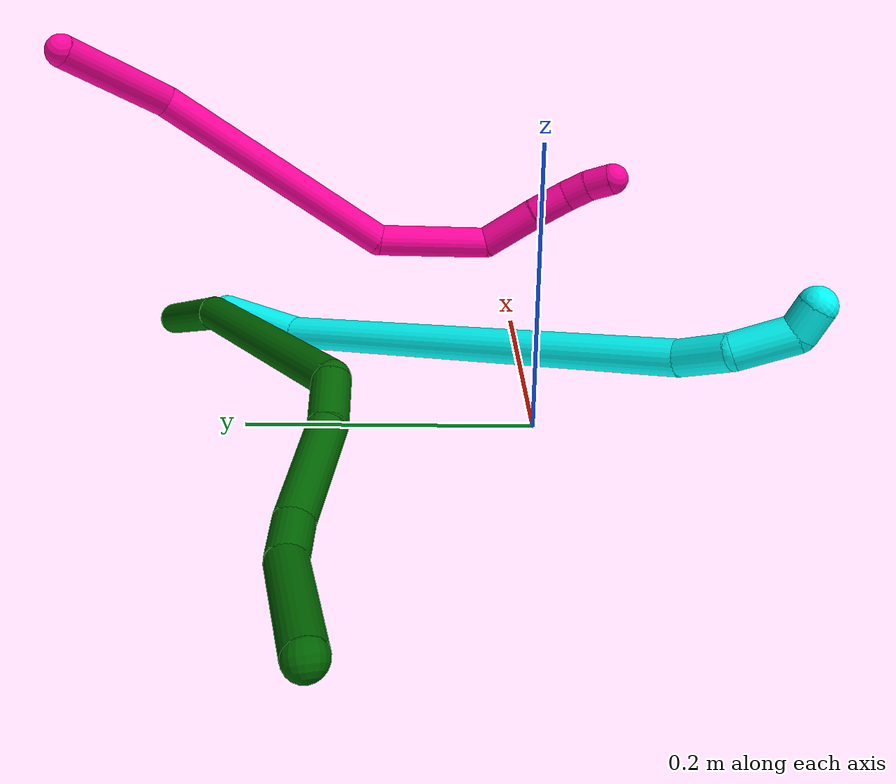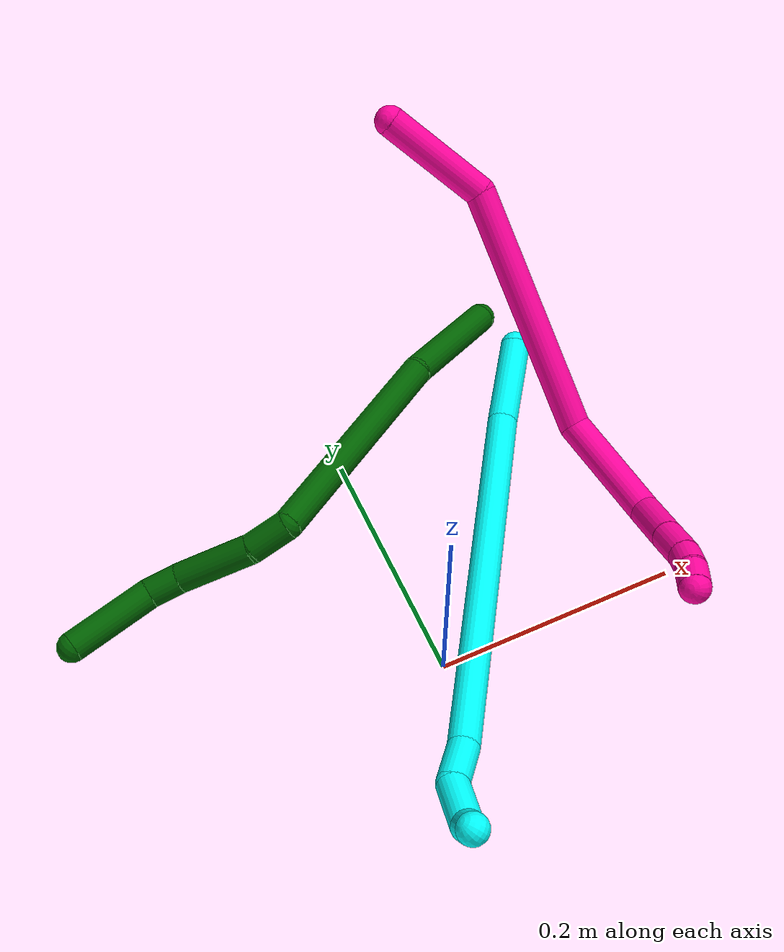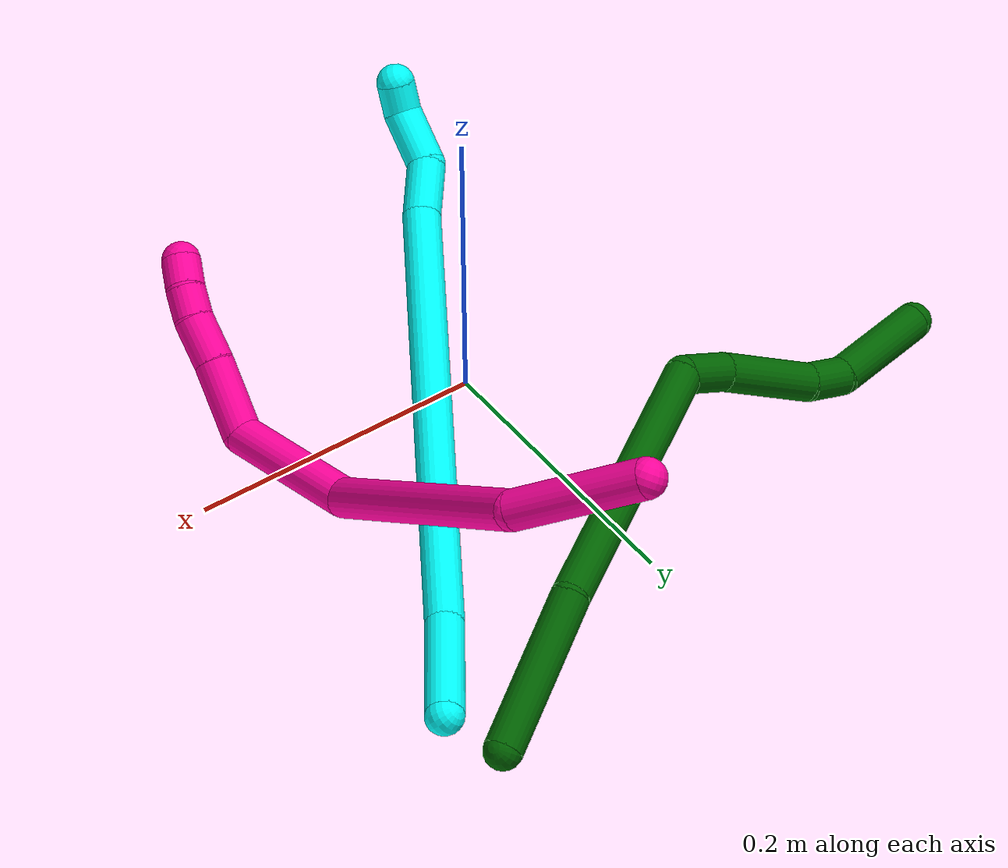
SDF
<sdf version="1.7">
 <world name="default">
  <model name="3">
   <static>0</static>
   <link name="3">
    <collision name="collision-cylinder-e_1_1_4">
     <pose>-0.022077 -0.032262 -0.004088 1.69684 -0.596408 -0.67117</pose>
     <geometry><cylinder><radius>0.0125</radius><length>0.07861</length></cylinder></geometry>
     <surface>
      <friction><ode><mu>1.16</mu><mu2>1.16</mu2><slip1>0</slip1><slip2>0</slip2></ode></friction>
      <contact><ode><kp>1e+06</kp><kd>1</kd><max_vel>0</max_vel><min_depth>0.001</min_depth></ode></contact>
     </surface>
    </collision>
    <visual name="visual-cylinder-e_1_1_4">
     <pose>-0.022077 -0.032262 -0.004088 1.69684 -0.596408 -0.67117</pose>
     <geometry><cylinder><radius>0.0125</radius><length>0.07861</length></cylinder></geometry>
     <material><ambient>0.003922 1 0.996078 1</ambient></material>
    </visual>
    <collision name="collision-cylinder-e_2_4_5">
     <pose>-0.111099 -0.210928 -0.00857 1.57349 -0.428872 -0.429992</pose>
     <geometry><cylinder><radius>0.0125</radius><length>0.321971</length></cylinder></geometry>
     <surface>
      <friction><ode><mu>1.16</mu><mu2>1.16</mu2><slip1>0</slip1><slip2>0</slip2></ode></friction>
      <contact><ode><kp>1e+06</kp><kd>1</kd><max_vel>0</max_vel><min_depth>0.001</min_depth></ode></contact>
     </surface>
    </collision>
    <visual name="visual-cylinder-e_2_4_5">
     <pose>-0.111099 -0.210928 -0.00857 1.57349 -0.428872 -0.429992</pose>
     <geometry><cylinder><radius>0.0125</radius><length>0.321971</length></cylinder></geometry>
     <material><ambient>0.003922 1 0.996078 1</ambient></material>
    </visual>
    <collision name="collision-cylinder-e_3_5_6">
     <pose>-0.184427 -0.374574 -0.004468 1.31573 -0.344021 -0.266879</pose>
     <geometry><cylinder><radius>0.0125</radius><length>0.037852</length></cylinder></geometry>
     <surface>
      <friction><ode><mu>1.16</mu><mu2>1.16</mu2><slip1>0</slip1><slip2>0</slip2></ode></friction>
      <contact><ode><kp>1e+06</kp><kd>1</kd><max_vel>0</max_vel><min_depth>0.001</min_depth></ode></contact>
     </surface>
    </collision>
    <visual name="visual-cylinder-e_3_5_6">
     <pose>-0.184427 -0.374574 -0.004468 1.31573 -0.344021 -0.266879</pose>
     <geometry><cylinder><radius>0.0125</radius><length>0.037852</length></cylinder></geometry>
     <material><ambient>0.003922 1 0.996078 1</ambient></material>
    </visual>
    <collision name="collision-cylinder-e_4_6_7">
     <pose>-0.191055 -0.411975 -0.001724 1.65745 -0.012093 -0.013189</pose>
     <geometry><cylinder><radius>0.0125</radius><length>0.040475</length></cylinder></geometry>
     <surface>
      <friction><ode><mu>1.16</mu><mu2>1.16</mu2><slip1>0</slip1><slip2>0</slip2></ode></friction>
      <contact><ode><kp>1e+06</kp><kd>1</kd><max_vel>0</max_vel><min_depth>0.001</min_depth></ode></contact>
     </surface>
    </collision>
    <visual name="visual-cylinder-e_4_6_7">
     <pose>-0.191055 -0.411975 -0.001724 1.65745 -0.012093 -0.013189</pose>
     <geometry><cylinder><radius>0.0125</radius><length>0.040475</length></cylinder></geometry>
     <material><ambient>0.003922 1 0.996078 1</ambient></material>
    </visual>
    <collision name="collision-cylinder-e_5_7_2">
     <pose>-0.186788 -0.440553 0.000997 1.08238 0.442105 0.268516</pose>
     <geometry><cylinder><radius>0.0125</radius><length>0.021091</length></cylinder></geometry>
     <surface>
      <friction><ode><mu>1.16</mu><mu2>1.16</mu2><slip1>0</slip1><slip2>0</slip2></ode></friction>
      <contact><ode><kp>1e+06</kp><kd>1</kd><max_vel>0</max_vel><min_depth>0.001</min_depth></ode></contact>
     </surface>
    </collision>
    <visual name="visual-cylinder-e_5_7_2">
     <pose>-0.186788 -0.440553 0.000997 1.08238 0.442105 0.268516</pose>
     <geometry><cylinder><radius>0.0125</radius><length>0.021091</length></cylinder></geometry>
     <material><ambient>0.003922 1 0.996078 1</ambient></material>
    </visual>
    <collision name="collision-sphere-2">
     <pose>-0.182276 -0.44897 0.00547 0 -0 0</pose>
     <geometry><sphere><radius>0.0125</radius></sphere></geometry>
     <surface>
      <friction><ode><mu>1.16</mu><mu2>1.16</mu2><slip1>0</slip1><slip2>0</slip2></ode></friction>
      <contact><ode><kp>1e+06</kp><kd>1</kd><max_vel>0</max_vel><min_depth>0.001</min_depth></ode></contact>
     </surface>
    </collision>
    <visual name="visual-sphere-2">
     <pose>-0.182276 -0.44897 0.00547 0 -0 0</pose>
     <geometry><sphere><radius>0.0125</radius></sphere></geometry>
     <material><ambient>0.003922 1 0.996078 1</ambient></material>
    </visual>
    <collision name="collision-sphere-7">
     <pose>-0.1913 -0.432135 -0.003476 0 -0 0</pose>
     <geometry><sphere><radius>0.0125</radius></sphere></geometry>
     <surface>
      <friction><ode><mu>1.16</mu><mu2>1.16</mu2><slip1>0</slip1><slip2>0</slip2></ode></friction>
      <contact><ode><kp>1e+06</kp><kd>1</kd><max_vel>0</max_vel><min_depth>0.001</min_depth></ode></contact>
     </surface>
    </collision>
    <visual name="visual-sphere-7">
     <pose>-0.1913 -0.432135 -0.003476 0 -0 0</pose>
     <geometry><sphere><radius>0.0125</radius></sphere></geometry>
     <material><ambient>0.003922 1 0.996078 1</ambient></material>
    </visual>
    <collision name="collision-sphere-6">
     <pose>-0.19081 -0.391815 2.7e-05 0 -0 0</pose>
     <geometry><sphere><radius>0.0125</radius></sphere></geometry>
     <surface>
      <friction><ode><mu>1.16</mu><mu2>1.16</mu2><slip1>0</slip1><slip2>0</slip2></ode></friction>
      <contact><ode><kp>1e+06</kp><kd>1</kd><max_vel>0</max_vel><min_depth>0.001</min_depth></ode></contact>
     </surface>
    </collision>
    <visual name="visual-sphere-6">
     <pose>-0.19081 -0.391815 2.7e-05 0 -0 0</pose>
     <geometry><sphere><radius>0.0125</radius></sphere></geometry>
     <material><ambient>0.003922 1 0.996078 1</ambient></material>
    </visual>
    <collision name="collision-sphere-5">
     <pose>-0.178044 -0.357334 -0.008964 0 -0 0</pose>
     <geometry><sphere><radius>0.0125</radius></sphere></geometry>
     <surface>
      <friction><ode><mu>1.16</mu><mu2>1.16</mu2><slip1>0</slip1><slip2>0</slip2></ode></friction>
      <contact><ode><kp>1e+06</kp><kd>1</kd><max_vel>0</max_vel><min_depth>0.001</min_depth></ode></contact>
     </surface>
    </collision>
    <visual name="visual-sphere-5">
     <pose>-0.178044 -0.357334 -0.008964 0 -0 0</pose>
     <geometry><sphere><radius>0.0125</radius></sphere></geometry>
     <material><ambient>0.003922 1 0.996078 1</ambient></material>
    </visual>
    <collision name="collision-sphere-1">
     <geometry><sphere><radius>0.0125</radius></sphere></geometry>
     <surface>
      <friction><ode><mu>1.16</mu><mu2>1.16</mu2><slip1>0</slip1><slip2>0</slip2></ode></friction>
      <contact><ode><kp>1e+06</kp><kd>1</kd><max_vel>0</max_vel><min_depth>0.001</min_depth></ode></contact>
     </surface>
    </collision>
    <visual name="visual-sphere-1">
     <geometry><sphere><radius>0.0125</radius></sphere></geometry>
     <material><ambient>0.003922 1 0.996078 1</ambient></material>
    </visual>
    <collision name="collision-sphere-4">
     <pose>-0.044153 -0.064523 -0.008176 0 -0 0</pose>
     <geometry><sphere><radius>0.0125</radius></sphere></geometry>
     <surface>
      <friction><ode><mu>1.16</mu><mu2>1.16</mu2><slip1>0</slip1><slip2>0</slip2></ode></friction>
      <contact><ode><kp>1e+06</kp><kd>1</kd><max_vel>0</max_vel><min_depth>0.001</min_depth></ode></contact>
     </surface>
    </collision>
    <visual name="visual-sphere-4">
     <pose>-0.044153 -0.064523 -0.008176 0 -0 0</pose>
     <geometry><sphere><radius>0.0125</radius></sphere></geometry>
     <material><ambient>0.003922 1 0.996078 1</ambient></material>
    </visual>
    <inertial>
     <pose>-0.112319 -0.221188 -0.006597 0 -0 0</pose>
     <mass>0.5</mass>
     <inertia>
      <ixx>0.001255</ixx>
      <ixy>0</ixy>
      <ixz>0</ixz>
      <iyy>-0.000627</iyy>
      <iyz>0</iyz>
      <izz>0.003779</izz>
     </inertia>
    </inertial>
   </link>
   <pose>0.185727 0.243817 0.015055 -0.579364 -0.620935 0.125806</pose>
  </model>
  <model name="6">
   <static>0</static>
   <link name="6">
    <collision name="collision-cylinder-e_1_1_4">
     <pose>-0.038028 -0.033335 -0.017371 2.05117 -0.791192 -1.20596</pose>
     <geometry><cylinder><radius>0.0125</radius><length>0.106941</length></cylinder></geometry>
     <surface>
      <friction><ode><mu>1.16</mu><mu2>1.16</mu2><slip1>0</slip1><slip2>0</slip2></ode></friction>
      <contact><ode><kp>1e+06</kp><kd>1</kd><max_vel>0</max_vel><min_depth>0.001</min_depth></ode></contact>
     </surface>
    </collision>
    <visual name="visual-cylinder-e_1_1_4">
     <pose>-0.038028 -0.033335 -0.017371 2.05117 -0.791192 -1.20596</pose>
     <geometry><cylinder><radius>0.0125</radius><length>0.106941</length></cylinder></geometry>
     <material><ambient>0 0.392157 0.003922 1</ambient></material>
    </visual>
    <collision name="collision-cylinder-e_2_4_5">
     <pose>-0.129798 -0.125209 -0.086896 2.2986 -0.600904 -1.20934</pose>
     <geometry><cylinder><radius>0.0125</radius><length>0.190106</length></cylinder></geometry>
     <surface>
      <friction><ode><mu>1.16</mu><mu2>1.16</mu2><slip1>0</slip1><slip2>0</slip2></ode></friction>
      <contact><ode><kp>1e+06</kp><kd>1</kd><max_vel>0</max_vel><min_depth>0.001</min_depth></ode></contact>
     </surface>
    </collision>
    <visual name="visual-cylinder-e_2_4_5">
     <pose>-0.129798 -0.125209 -0.086896 2.2986 -0.600904 -1.20934</pose>
     <geometry><cylinder><radius>0.0125</radius><length>0.190106</length></cylinder></geometry>
     <material><ambient>0 0.392157 0.003922 1</ambient></material>
    </visual>
    <collision name="collision-cylinder-e_3_5_6">
     <pose>-0.190902 -0.183366 -0.155004 -3.11773 -0.432268 3.03302</pose>
     <geometry><cylinder><radius>0.0125</radius><length>0.035147</length></cylinder></geometry>
     <surface>
      <friction><ode><mu>1.16</mu><mu2>1.16</mu2><slip1>0</slip1><slip2>0</slip2></ode></friction>
      <contact><ode><kp>1e+06</kp><kd>1</kd><max_vel>0</max_vel><min_depth>0.001</min_depth></ode></contact>
     </surface>
    </collision>
    <visual name="visual-cylinder-e_3_5_6">
     <pose>-0.190902 -0.183366 -0.155004 -3.11773 -0.432268 3.03302</pose>
     <geometry><cylinder><radius>0.0125</radius><length>0.035147</length></cylinder></geometry>
     <material><ambient>0 0.392157 0.003922 1</ambient></material>
    </visual>
    <collision name="collision-cylinder-e_4_6_7">
     <pose>-0.212619 -0.174834 -0.199572 -2.86408 -0.449519 2.04489</pose>
     <geometry><cylinder><radius>0.0125</radius><length>0.066071</length></cylinder></geometry>
     <surface>
      <friction><ode><mu>1.16</mu><mu2>1.16</mu2><slip1>0</slip1><slip2>0</slip2></ode></friction>
      <contact><ode><kp>1e+06</kp><kd>1</kd><max_vel>0</max_vel><min_depth>0.001</min_depth></ode></contact>
     </surface>
    </collision>
    <visual name="visual-cylinder-e_4_6_7">
     <pose>-0.212619 -0.174834 -0.199572 -2.86408 -0.449519 2.04489</pose>
     <geometry><cylinder><radius>0.0125</radius><length>0.066071</length></cylinder></geometry>
     <material><ambient>0 0.392157 0.003922 1</ambient></material>
    </visual>
    <collision name="collision-cylinder-e_5_7_8">
     <pose>-0.234825 -0.166201 -0.239784 -3.10007 -0.594698 3.00628</pose>
     <geometry><cylinder><radius>0.0125</radius><length>0.028026</length></cylinder></geometry>
     <surface>
      <friction><ode><mu>1.16</mu><mu2>1.16</mu2><slip1>0</slip1><slip2>0</slip2></ode></friction>
      <contact><ode><kp>1e+06</kp><kd>1</kd><max_vel>0</max_vel><min_depth>0.001</min_depth></ode></contact>
     </surface>
    </collision>
    <visual name="visual-cylinder-e_5_7_8">
     <pose>-0.234825 -0.166201 -0.239784 -3.10007 -0.594698 3.00628</pose>
     <geometry><cylinder><radius>0.0125</radius><length>0.028026</length></cylinder></geometry>
     <material><ambient>0 0.392157 0.003922 1</ambient></material>
    </visual>
    <collision name="collision-cylinder-e_6_8_2">
     <pose>-0.266498 -0.176774 -0.277238 2.73759 -0.702838 -2.12278</pose>
     <geometry><cylinder><radius>0.0125</radius><length>0.073709</length></cylinder></geometry>
     <surface>
      <friction><ode><mu>1.16</mu><mu2>1.16</mu2><slip1>0</slip1><slip2>0</slip2></ode></friction>
      <contact><ode><kp>1e+06</kp><kd>1</kd><max_vel>0</max_vel><min_depth>0.001</min_depth></ode></contact>
     </surface>
    </collision>
    <visual name="visual-cylinder-e_6_8_2">
     <pose>-0.266498 -0.176774 -0.277238 2.73759 -0.702838 -2.12278</pose>
     <geometry><cylinder><radius>0.0125</radius><length>0.073709</length></cylinder></geometry>
     <material><ambient>0 0.392157 0.003922 1</ambient></material>
    </visual>
    <collision name="collision-sphere-2">
     <pose>-0.29032 -0.187828 -0.303095 0 -0 0</pose>
     <geometry><sphere><radius>0.0125</radius></sphere></geometry>
     <surface>
      <friction><ode><mu>1.16</mu><mu2>1.16</mu2><slip1>0</slip1><slip2>0</slip2></ode></friction>
      <contact><ode><kp>1e+06</kp><kd>1</kd><max_vel>0</max_vel><min_depth>0.001</min_depth></ode></contact>
     </surface>
    </collision>
    <visual name="visual-sphere-2">
     <pose>-0.29032 -0.187828 -0.303095 0 -0 0</pose>
     <geometry><sphere><radius>0.0125</radius></sphere></geometry>
     <material><ambient>0 0.392157 0.003922 1</ambient></material>
    </visual>
    <collision name="collision-sphere-4">
     <pose>-0.076056 -0.066671 -0.034741 0 -0 0</pose>
     <geometry><sphere><radius>0.0125</radius></sphere></geometry>
     <surface>
      <friction><ode><mu>1.16</mu><mu2>1.16</mu2><slip1>0</slip1><slip2>0</slip2></ode></friction>
      <contact><ode><kp>1e+06</kp><kd>1</kd><max_vel>0</max_vel><min_depth>0.001</min_depth></ode></contact>
     </surface>
    </collision>
    <visual name="visual-sphere-4">
     <pose>-0.076056 -0.066671 -0.034741 0 -0 0</pose>
     <geometry><sphere><radius>0.0125</radius></sphere></geometry>
     <material><ambient>0 0.392157 0.003922 1</ambient></material>
    </visual>
    <collision name="collision-sphere-1">
     <geometry><sphere><radius>0.0125</radius></sphere></geometry>
     <surface>
      <friction><ode><mu>1.16</mu><mu2>1.16</mu2><slip1>0</slip1><slip2>0</slip2></ode></friction>
      <contact><ode><kp>1e+06</kp><kd>1</kd><max_vel>0</max_vel><min_depth>0.001</min_depth></ode></contact>
     </surface>
    </collision>
    <visual name="visual-sphere-1">
     <geometry><sphere><radius>0.0125</radius></sphere></geometry>
     <material><ambient>0 0.392157 0.003922 1</ambient></material>
    </visual>
    <collision name="collision-sphere-8">
     <pose>-0.242675 -0.165719 -0.251382 0 -0 0</pose>
     <geometry><sphere><radius>0.0125</radius></sphere></geometry>
     <surface>
      <friction><ode><mu>1.16</mu><mu2>1.16</mu2><slip1>0</slip1><slip2>0</slip2></ode></friction>
      <contact><ode><kp>1e+06</kp><kd>1</kd><max_vel>0</max_vel><min_depth>0.001</min_depth></ode></contact>
     </surface>
    </collision>
    <visual name="visual-sphere-8">
     <pose>-0.242675 -0.165719 -0.251382 0 -0 0</pose>
     <geometry><sphere><radius>0.0125</radius></sphere></geometry>
     <material><ambient>0 0.392157 0.003922 1</ambient></material>
    </visual>
    <collision name="collision-sphere-5">
     <pose>-0.18354 -0.183747 -0.139052 0 -0 0</pose>
     <geometry><sphere><radius>0.0125</radius></sphere></geometry>
     <surface>
      <friction><ode><mu>1.16</mu><mu2>1.16</mu2><slip1>0</slip1><slip2>0</slip2></ode></friction>
      <contact><ode><kp>1e+06</kp><kd>1</kd><max_vel>0</max_vel><min_depth>0.001</min_depth></ode></contact>
     </surface>
    </collision>
    <visual name="visual-sphere-5">
     <pose>-0.18354 -0.183747 -0.139052 0 -0 0</pose>
     <geometry><sphere><radius>0.0125</radius></sphere></geometry>
     <material><ambient>0 0.392157 0.003922 1</ambient></material>
    </visual>
    <collision name="collision-sphere-6">
     <pose>-0.198264 -0.182986 -0.170957 0 -0 0</pose>
     <geometry><sphere><radius>0.0125</radius></sphere></geometry>
     <surface>
      <friction><ode><mu>1.16</mu><mu2>1.16</mu2><slip1>0</slip1><slip2>0</slip2></ode></friction>
      <contact><ode><kp>1e+06</kp><kd>1</kd><max_vel>0</max_vel><min_depth>0.001</min_depth></ode></contact>
     </surface>
    </collision>
    <visual name="visual-sphere-6">
     <pose>-0.198264 -0.182986 -0.170957 0 -0 0</pose>
     <geometry><sphere><radius>0.0125</radius></sphere></geometry>
     <material><ambient>0 0.392157 0.003922 1</ambient></material>
    </visual>
    <collision name="collision-sphere-7">
     <pose>-0.226974 -0.166683 -0.228187 0 -0 0</pose>
     <geometry><sphere><radius>0.0125</radius></sphere></geometry>
     <surface>
      <friction><ode><mu>1.16</mu><mu2>1.16</mu2><slip1>0</slip1><slip2>0</slip2></ode></friction>
      <contact><ode><kp>1e+06</kp><kd>1</kd><max_vel>0</max_vel><min_depth>0.001</min_depth></ode></contact>
     </surface>
    </collision>
    <visual name="visual-sphere-7">
     <pose>-0.226974 -0.166683 -0.228187 0 -0 0</pose>
     <geometry><sphere><radius>0.0125</radius></sphere></geometry>
     <material><ambient>0 0.392157 0.003922 1</ambient></material>
    </visual>
    <inertial>
     <pose>-0.151448 -0.126104 -0.128332 0 -0 0</pose>
     <mass>0.5</mass>
     <inertia>
      <ixx>-0.000378</ixx>
      <ixy>0</ixy>
      <ixz>0</ixz>
      <iyy>-0.000348</iyy>
      <iyz>0</iyz>
      <izz>0.000846</izz>
     </inertia>
    </inertial>
   </link>
   <pose>0.17216 0.285301 0.012336 -0.33429 0.660507 -0.305425</pose>
  </model>
  <model name="18">
   <static>0</static>
   <link name="18">
    <collision name="collision-cylinder-e_1_1_4">
     <pose>0.015707 -0.035058 -0.024014 2.17137 0.354049 0.654367</pose>
     <geometry><cylinder><radius>0.0125</radius><length>0.090608</length></cylinder></geometry>
     <surface>
      <friction><ode><mu>1.16</mu><mu2>1.16</mu2><slip1>0</slip1><slip2>0</slip2></ode></friction>
      <contact><ode><kp>1e+06</kp><kd>1</kd><max_vel>0</max_vel><min_depth>0.001</min_depth></ode></contact>
     </surface>
    </collision>
    <visual name="visual-cylinder-e_1_1_4">
     <pose>0.015707 -0.035058 -0.024014 2.17137 0.354049 0.654367</pose>
     <geometry><cylinder><radius>0.0125</radius><length>0.090608</length></cylinder></geometry>
     <material><ambient>1 0.007843 0.615686 1</ambient></material>
    </visual>
    <collision name="collision-cylinder-e_2_4_5">
     <pose>0.026539 -0.167838 -0.070477 1.7966 -0.048577 -0.060994</pose>
     <geometry><cylinder><radius>0.0125</radius><length>0.200771</length></cylinder></geometry>
     <surface>
      <friction><ode><mu>1.16</mu><mu2>1.16</mu2><slip1>0</slip1><slip2>0</slip2></ode></friction>
      <contact><ode><kp>1e+06</kp><kd>1</kd><max_vel>0</max_vel><min_depth>0.001</min_depth></ode></contact>
     </surface>
    </collision>
    <visual name="visual-cylinder-e_2_4_5">
     <pose>0.026539 -0.167838 -0.070477 1.7966 -0.048577 -0.060994</pose>
     <geometry><cylinder><radius>0.0125</radius><length>0.200771</length></cylinder></geometry>
     <material><ambient>1 0.007843 0.615686 1</ambient></material>
    </visual>
    <collision name="collision-cylinder-e_3_5_6">
     <pose>0.038915 -0.306997 -0.08851 1.46463 0.392483 0.353745</pose>
     <geometry><cylinder><radius>0.0125</radius><length>0.090201</length></cylinder></geometry>
     <surface>
      <friction><ode><mu>1.16</mu><mu2>1.16</mu2><slip1>0</slip1><slip2>0</slip2></ode></friction>
      <contact><ode><kp>1e+06</kp><kd>1</kd><max_vel>0</max_vel><min_depth>0.001</min_depth></ode></contact>
     </surface>
    </collision>
    <visual name="visual-cylinder-e_3_5_6">
     <pose>0.038915 -0.306997 -0.08851 1.46463 0.392483 0.353745</pose>
     <geometry><cylinder><radius>0.0125</radius><length>0.090201</length></cylinder></geometry>
     <material><ambient>1 0.007843 0.615686 1</ambient></material>
    </visual>
    <collision name="collision-cylinder-e_4_6_7">
     <pose>0.067266 -0.361195 -0.066932 0.639363 0.478754 0.161233</pose>
     <geometry><cylinder><radius>0.0125</radius><length>0.048192</length></cylinder></geometry>
     <surface>
      <friction><ode><mu>1.16</mu><mu2>1.16</mu2><slip1>0</slip1><slip2>0</slip2></ode></friction>
      <contact><ode><kp>1e+06</kp><kd>1</kd><max_vel>0</max_vel><min_depth>0.001</min_depth></ode></contact>
     </surface>
    </collision>
    <visual name="visual-cylinder-e_4_6_7">
     <pose>0.067266 -0.361195 -0.066932 0.639363 0.478754 0.161233</pose>
     <geometry><cylinder><radius>0.0125</radius><length>0.048192</length></cylinder></geometry>
     <material><ambient>1 0.007843 0.615686 1</ambient></material>
    </visual>
    <collision name="collision-cylinder-e_5_7_8">
     <pose>0.085544 -0.382695 -0.039817 0.720555 0.496644 0.190461</pose>
     <geometry><cylinder><radius>0.0125</radius><length>0.03013</length></cylinder></geometry>
     <surface>
      <friction><ode><mu>1.16</mu><mu2>1.16</mu2><slip1>0</slip1><slip2>0</slip2></ode></friction>
      <contact><ode><kp>1e+06</kp><kd>1</kd><max_vel>0</max_vel><min_depth>0.001</min_depth></ode></contact>
     </surface>
    </collision>
    <visual name="visual-cylinder-e_5_7_8">
     <pose>0.085544 -0.382695 -0.039817 0.720555 0.496644 0.190461</pose>
     <geometry><cylinder><radius>0.0125</radius><length>0.03013</length></cylinder></geometry>
     <material><ambient>1 0.007843 0.615686 1</ambient></material>
    </visual>
    <collision name="collision-cylinder-e_6_8_9">
     <pose>0.095966 -0.397203 -0.022314 0.652472 0.328961 0.112192</pose>
     <geometry><cylinder><radius>0.0125</radius><length>0.020081</length></cylinder></geometry>
     <surface>
      <friction><ode><mu>1.16</mu><mu2>1.16</mu2><slip1>0</slip1><slip2>0</slip2></ode></friction>
      <contact><ode><kp>1e+06</kp><kd>1</kd><max_vel>0</max_vel><min_depth>0.001</min_depth></ode></contact>
     </surface>
    </collision>
    <visual name="visual-cylinder-e_6_8_9">
     <pose>0.095966 -0.397203 -0.022314 0.652472 0.328961 0.112192</pose>
     <geometry><cylinder><radius>0.0125</radius><length>0.020081</length></cylinder></geometry>
     <material><ambient>1 0.007843 0.615686 1</ambient></material>
    </visual>
    <collision name="collision-cylinder-e_7_9_2">
     <pose>0.100675 -0.409546 -0.007361 0.726185 0.146963 0.055923</pose>
     <geometry><cylinder><radius>0.0125</radius><length>0.020017</length></cylinder></geometry>
     <surface>
      <friction><ode><mu>1.16</mu><mu2>1.16</mu2><slip1>0</slip1><slip2>0</slip2></ode></friction>
      <contact><ode><kp>1e+06</kp><kd>1</kd><max_vel>0</max_vel><min_depth>0.001</min_depth></ode></contact>
     </surface>
    </collision>
    <visual name="visual-cylinder-e_7_9_2">
     <pose>0.100675 -0.409546 -0.007361 0.726185 0.146963 0.055923</pose>
     <geometry><cylinder><radius>0.0125</radius><length>0.020017</length></cylinder></geometry>
     <material><ambient>1 0.007843 0.615686 1</ambient></material>
    </visual>
    <collision name="collision-sphere-2">
     <pose>0.102141 -0.416121 4.2e-05 0 -0 0</pose>
     <geometry><sphere><radius>0.0125</radius></sphere></geometry>
     <surface>
      <friction><ode><mu>1.16</mu><mu2>1.16</mu2><slip1>0</slip1><slip2>0</slip2></ode></friction>
      <contact><ode><kp>1e+06</kp><kd>1</kd><max_vel>0</max_vel><min_depth>0.001</min_depth></ode></contact>
     </surface>
    </collision>
    <visual name="visual-sphere-2">
     <pose>0.102141 -0.416121 4.2e-05 0 -0 0</pose>
     <geometry><sphere><radius>0.0125</radius></sphere></geometry>
     <material><ambient>1 0.007843 0.615686 1</ambient></material>
    </visual>
    <collision name="collision-sphere-9">
     <pose>0.09921 -0.402972 -0.014763 0 -0 0</pose>
     <geometry><sphere><radius>0.0125</radius></sphere></geometry>
     <surface>
      <friction><ode><mu>1.16</mu><mu2>1.16</mu2><slip1>0</slip1><slip2>0</slip2></ode></friction>
      <contact><ode><kp>1e+06</kp><kd>1</kd><max_vel>0</max_vel><min_depth>0.001</min_depth></ode></contact>
     </surface>
    </collision>
    <visual name="visual-sphere-9">
     <pose>0.09921 -0.402972 -0.014763 0 -0 0</pose>
     <geometry><sphere><radius>0.0125</radius></sphere></geometry>
     <material><ambient>1 0.007843 0.615686 1</ambient></material>
    </visual>
    <collision name="collision-sphere-4">
     <pose>0.031414 -0.070117 -0.048028 0 -0 0</pose>
     <geometry><sphere><radius>0.0125</radius></sphere></geometry>
     <surface>
      <friction><ode><mu>1.16</mu><mu2>1.16</mu2><slip1>0</slip1><slip2>0</slip2></ode></friction>
      <contact><ode><kp>1e+06</kp><kd>1</kd><max_vel>0</max_vel><min_depth>0.001</min_depth></ode></contact>
     </surface>
    </collision>
    <visual name="visual-sphere-4">
     <pose>0.031414 -0.070117 -0.048028 0 -0 0</pose>
     <geometry><sphere><radius>0.0125</radius></sphere></geometry>
     <material><ambient>1 0.007843 0.615686 1</ambient></material>
    </visual>
    <collision name="collision-sphere-1">
     <geometry><sphere><radius>0.0125</radius></sphere></geometry>
     <surface>
      <friction><ode><mu>1.16</mu><mu2>1.16</mu2><slip1>0</slip1><slip2>0</slip2></ode></friction>
      <contact><ode><kp>1e+06</kp><kd>1</kd><max_vel>0</max_vel><min_depth>0.001</min_depth></ode></contact>
     </surface>
    </collision>
    <visual name="visual-sphere-1">
     <geometry><sphere><radius>0.0125</radius></sphere></geometry>
     <material><ambient>1 0.007843 0.615686 1</ambient></material>
    </visual>
    <collision name="collision-sphere-8">
     <pose>0.092722 -0.391434 -0.029864 0 -0 0</pose>
     <geometry><sphere><radius>0.0125</radius></sphere></geometry>
     <surface>
      <friction><ode><mu>1.16</mu><mu2>1.16</mu2><slip1>0</slip1><slip2>0</slip2></ode></friction>
      <contact><ode><kp>1e+06</kp><kd>1</kd><max_vel>0</max_vel><min_depth>0.001</min_depth></ode></contact>
     </surface>
    </collision>
    <visual name="visual-sphere-8">
     <pose>0.092722 -0.391434 -0.029864 0 -0 0</pose>
     <geometry><sphere><radius>0.0125</radius></sphere></geometry>
     <material><ambient>1 0.007843 0.615686 1</ambient></material>
    </visual>
    <collision name="collision-sphere-5">
     <pose>0.021665 -0.26556 -0.092926 0 -0 0</pose>
     <geometry><sphere><radius>0.0125</radius></sphere></geometry>
     <surface>
      <friction><ode><mu>1.16</mu><mu2>1.16</mu2><slip1>0</slip1><slip2>0</slip2></ode></friction>
      <contact><ode><kp>1e+06</kp><kd>1</kd><max_vel>0</max_vel><min_depth>0.001</min_depth></ode></contact>
     </surface>
    </collision>
    <visual name="visual-sphere-5">
     <pose>0.021665 -0.26556 -0.092926 0 -0 0</pose>
     <geometry><sphere><radius>0.0125</radius></sphere></geometry>
     <material><ambient>1 0.007843 0.615686 1</ambient></material>
    </visual>
    <collision name="collision-sphere-6">
     <pose>0.056165 -0.348433 -0.084094 0 -0 0</pose>
     <geometry><sphere><radius>0.0125</radius></sphere></geometry>
     <surface>
      <friction><ode><mu>1.16</mu><mu2>1.16</mu2><slip1>0</slip1><slip2>0</slip2></ode></friction>
      <contact><ode><kp>1e+06</kp><kd>1</kd><max_vel>0</max_vel><min_depth>0.001</min_depth></ode></contact>
     </surface>
    </collision>
    <visual name="visual-sphere-6">
     <pose>0.056165 -0.348433 -0.084094 0 -0 0</pose>
     <geometry><sphere><radius>0.0125</radius></sphere></geometry>
     <material><ambient>1 0.007843 0.615686 1</ambient></material>
    </visual>
    <collision name="collision-sphere-7">
     <pose>0.078366 -0.373956 -0.049769 0 -0 0</pose>
     <geometry><sphere><radius>0.0125</radius></sphere></geometry>
     <surface>
      <friction><ode><mu>1.16</mu><mu2>1.16</mu2><slip1>0</slip1><slip2>0</slip2></ode></friction>
      <contact><ode><kp>1e+06</kp><kd>1</kd><max_vel>0</max_vel><min_depth>0.001</min_depth></ode></contact>
     </surface>
    </collision>
    <visual name="visual-sphere-7">
     <pose>0.078366 -0.373956 -0.049769 0 -0 0</pose>
     <geometry><sphere><radius>0.0125</radius></sphere></geometry>
     <material><ambient>1 0.007843 0.615686 1</ambient></material>
    </visual>
    <inertial>
     <pose>0.040046 -0.219353 -0.05866 0 -0 0</pose>
     <mass>0.5</mass>
     <inertia>
      <ixx>0.000828</ixx>
      <ixy>0</ixy>
      <ixz>0</ixz>
      <iyy>-0.000153</iyy>
      <iyz>0</iyz>
      <izz>0.000762</izz>
     </inertia>
    </inertial>
   </link>
   <pose>0.108146 0.337513 0.243444 0.499456 -0.599691 -0.363227</pose>
  </model>
 </world>
</sdf>
